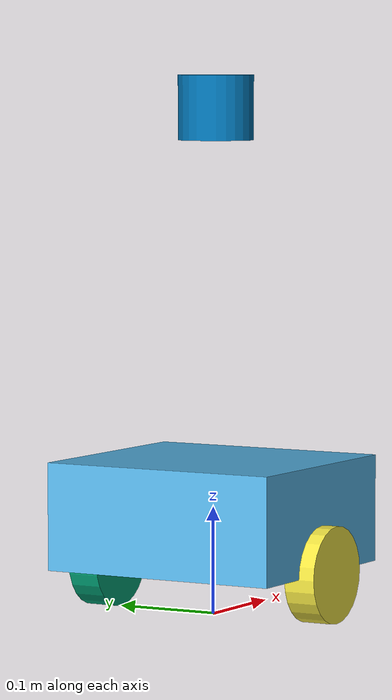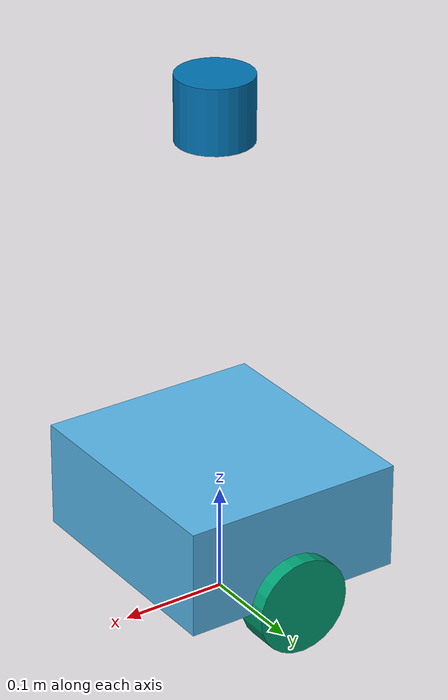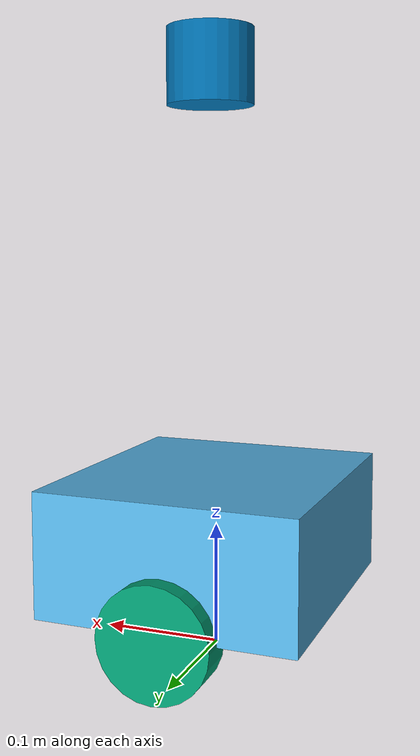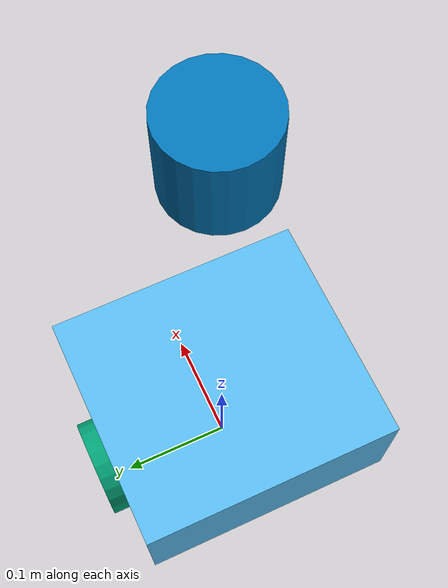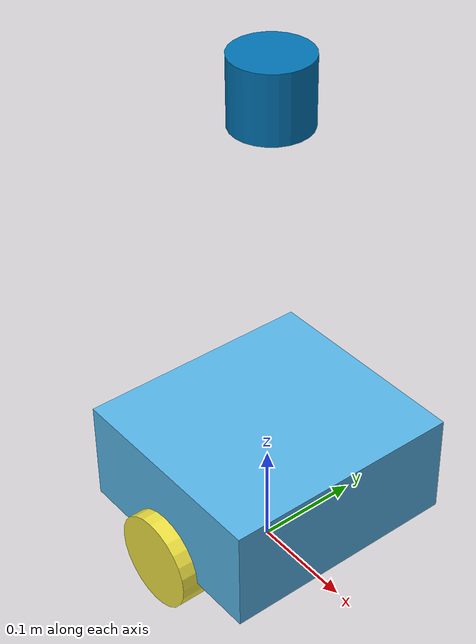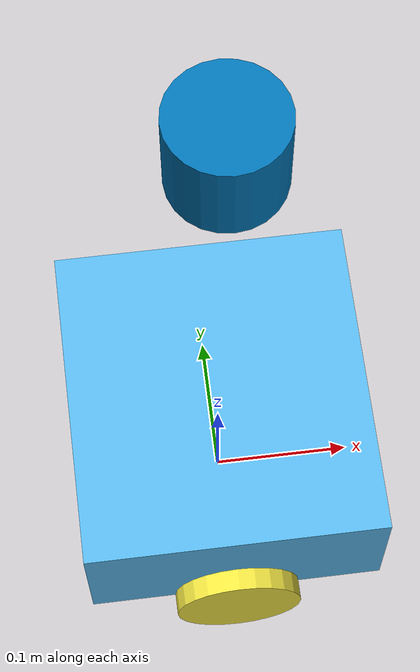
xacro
<?xml version="1.0"?>
<robot name="aria_robot" xmlns:xacro="http://www.ros.org/wiki/xacro">

  <!-- ====== Params (meters) ====== -->
  <xacro:property name="wheel_radius" value="0.045"/>
  <xacro:property name="wheel_width"  value="0.03"/>   <!-- 임시(나중에 실측) -->
  <xacro:property name="wheel_sep"    value="0.23"/>
  <xacro:property name="wheel_y"      value="${wheel_sep/2.0}"/>

  <!-- 바닥 기준 LiDAR 위치 -->
  <xacro:property name="lidar_x_from_center" value="0.005"/>
  <xacro:property name="lidar_y_from_center" value="0.0"/>
  <xacro:property name="lidar_z_from_floor"  value="0.44"/>

  <!-- base_link는 바퀴 축 높이 -->
  <xacro:property name="base_link_z_from_floor" value="${wheel_radius}"/>
  <!-- base_link 기준 LiDAR z -->
  <xacro:property name="lidar_z_from_base_link" value="${lidar_z_from_floor - base_link_z_from_floor}"/>

  <!-- 차체 외형(대략). 캐스터 x로 보면 길이 0.21m 정도 -->
  <xacro:property name="base_length" value="0.21"/>
  <xacro:property name="base_width"  value="0.23"/>
  <xacro:property name="base_height" value="0.10"/>  <!-- 임시(나중에 실측) -->

  <!-- ====== Links ====== -->
  <!-- 바닥 기준 프레임 -->
  <link name="base_footprint"/>

  <!-- 축 높이 기준 프레임 -->
  <link name="base_link">
    <visual>
      <origin xyz="0 0 ${base_height/2.0}" rpy="0 0 0"/>
      <geometry>
        <box size="${base_length} ${base_width} ${base_height}"/>
      </geometry>
    </visual>
  </link>

  <!-- base_footprint -> base_link (z=wheel_radius) -->
  <joint name="base_footprint_to_base_link" type="fixed">
    <parent link="base_footprint"/>
    <child  link="base_link"/>
    <origin xyz="0 0 ${base_link_z_from_floor}" rpy="0 0 0"/>
  </joint>

  <!-- Wheels -->
  <link name="left_wheel_link">
    <visual>
      <!-- 휠 축이 y방향이 되도록 회전(기본 실린더 축은 z) -->
      <origin xyz="0 0 0" rpy="1.57079632679 0 0"/>
      <geometry>
        <cylinder radius="${wheel_radius}" length="${wheel_width}"/>
      </geometry>
    </visual>
  </link>

  <link name="right_wheel_link">
    <visual>
      <origin xyz="0 0 0" rpy="1.57079632679 0 0"/>
      <geometry>
        <cylinder radius="${wheel_radius}" length="${wheel_width}"/>
      </geometry>
    </visual>
  </link>

  <joint name="left_wheel_joint" type="continuous">
    <parent link="base_link"/>
    <child  link="left_wheel_link"/>
    <origin xyz="0 ${wheel_y} 0" rpy="0 0 0"/>
    <!-- 바퀴 회전축: y축 -->
    <axis xyz="0 1 0"/>
  </joint>

  <joint name="right_wheel_joint" type="continuous">
    <parent link="base_link"/>
    <child  link="right_wheel_link"/>
    <origin xyz="0 -${wheel_y} 0" rpy="0 0 0"/>
    <axis xyz="0 1 0"/>
  </joint>

  <!-- LiDAR -->
  <link name="laser_frame">
    <visual>
      <!-- 라이다 높이 6cm는 "외형"으로만 -->
      <origin xyz="0 0 0.03" rpy="0 0 0"/>
      <geometry>
        <cylinder radius="0.035" length="0.06"/>
      </geometry>
    </visual>
  </link>

  <joint name="laser_joint" type="fixed">
    <parent link="base_link"/>
    <child  link="laser_frame"/>
    <origin xyz="${lidar_x_from_center} ${lidar_y_from_center} ${lidar_z_from_base_link}" rpy="0 0 0"/>
  </joint>

</robot>
